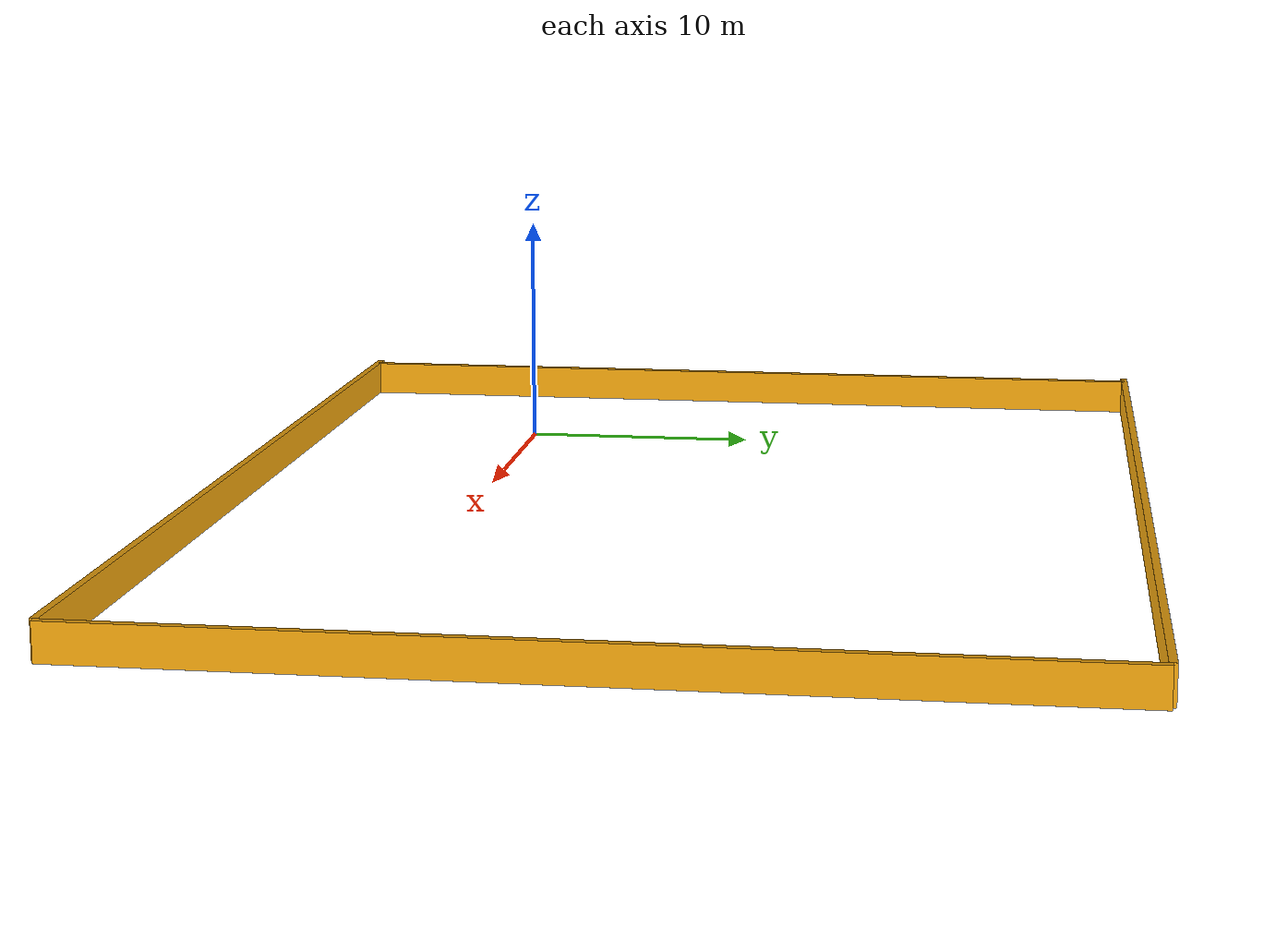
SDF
<?xml version="1.0"?>
<sdf version="1.9">
  <model name="orchard_safety_walls">
    <static>true</static>
    <link name="walls">
      <collision name="west_wall_collision">
        <pose>-9.05 8.92 0.75 0 0 0</pose>
        <geometry>
          <box>
            <size>0.30 37.64 1.50</size>
          </box>
        </geometry>
      </collision>
      <visual name="west_wall_visual">
        <pose>-9.05 8.92 0.75 0 0 0</pose>
        <geometry>
          <box>
            <size>0.30 37.64 1.50</size>
          </box>
        </geometry>
        <material>
          <ambient>0.95 0.65 0.05 1</ambient>
          <diffuse>0.95 0.65 0.05 1</diffuse>
        </material>
      </visual>

      <collision name="east_wall_collision">
        <pose>37.83 8.92 0.75 0 0 0</pose>
        <geometry>
          <box>
            <size>0.30 37.64 1.50</size>
          </box>
        </geometry>
      </collision>
      <visual name="east_wall_visual">
        <pose>37.83 8.92 0.75 0 0 0</pose>
        <geometry>
          <box>
            <size>0.30 37.64 1.50</size>
          </box>
        </geometry>
        <material>
          <ambient>0.95 0.65 0.05 1</ambient>
          <diffuse>0.95 0.65 0.05 1</diffuse>
        </material>
      </visual>

      <collision name="south_wall_collision">
        <pose>13.965 -9.90 0.75 0 0 0</pose>
        <geometry>
          <box>
            <size>47.43 0.30 1.50</size>
          </box>
        </geometry>
      </collision>
      <visual name="south_wall_visual">
        <pose>13.965 -9.90 0.75 0 0 0</pose>
        <geometry>
          <box>
            <size>47.43 0.30 1.50</size>
          </box>
        </geometry>
        <material>
          <ambient>0.95 0.65 0.05 1</ambient>
          <diffuse>0.95 0.65 0.05 1</diffuse>
        </material>
      </visual>

      <collision name="north_wall_collision">
        <pose>13.965 27.74 0.75 0 0 0</pose>
        <geometry>
          <box>
            <size>47.43 0.30 1.50</size>
          </box>
        </geometry>
      </collision>
      <visual name="north_wall_visual">
        <pose>13.965 27.74 0.75 0 0 0</pose>
        <geometry>
          <box>
            <size>47.43 0.30 1.50</size>
          </box>
        </geometry>
        <material>
          <ambient>0.95 0.65 0.05 1</ambient>
          <diffuse>0.95 0.65 0.05 1</diffuse>
        </material>
      </visual>
    </link>
  </model>
</sdf>
